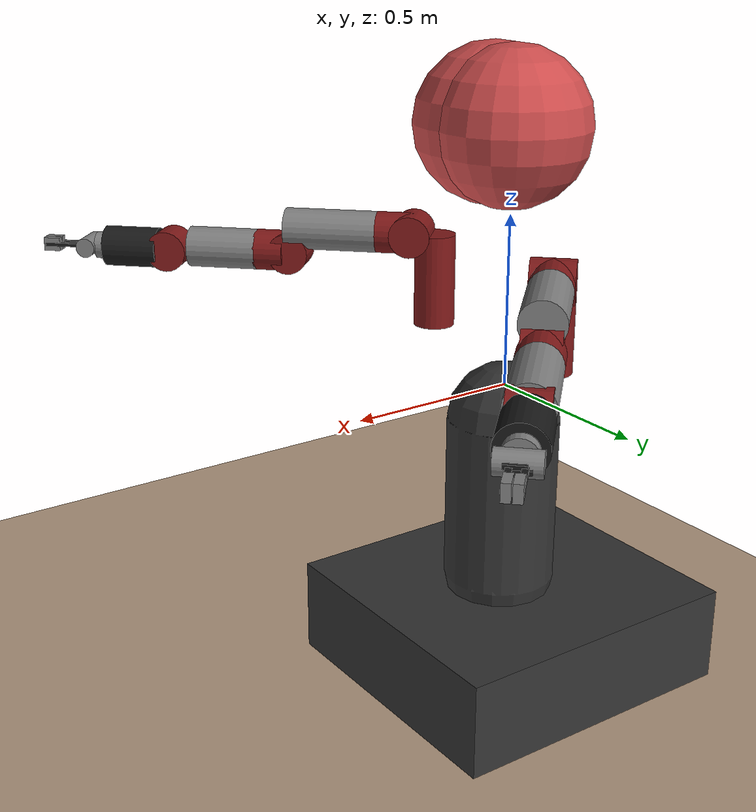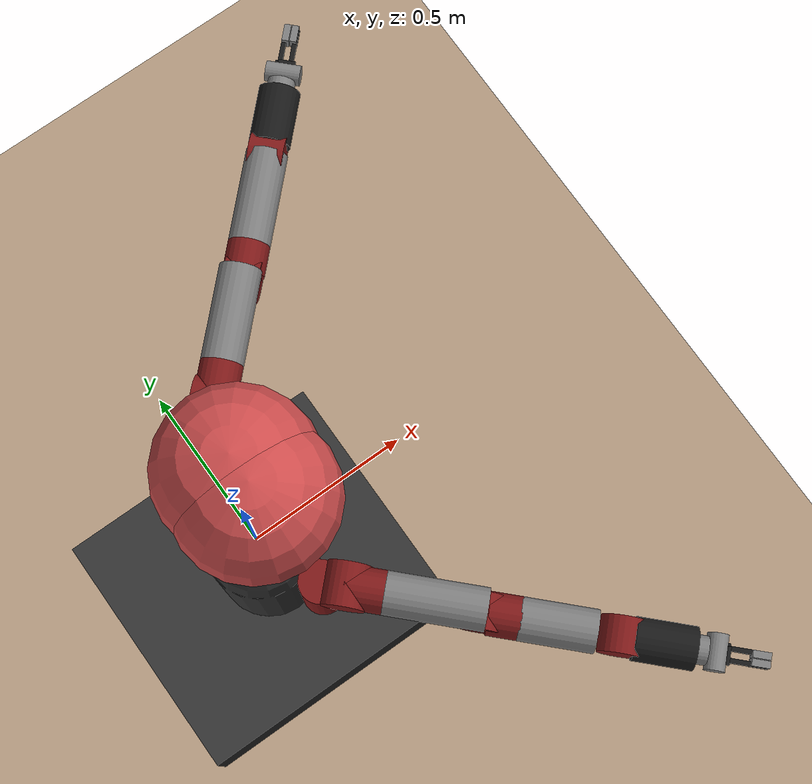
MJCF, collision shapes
<mujoco model="baxter">
  <compiler coordinate="local" angle="radian" meshdir="../../../models/baxter/mujoco/" texturedir="textures/" strippath="false" />
  <size njmax="795" nconmax="250" nstack="631875" />
  <option timestep="0.002"  gravity="0 0 -9.81" solver="Newton" noslip_iterations="0"/>
  <asset>
    <mesh name="base_link" file="meshes/torso/base_link.STL" />
    <mesh name="base_link_collision" file="meshes/torso/base_link_collision.STL" />
    <mesh name="PEDESTAL" file="meshes/base/PEDESTAL.STL" />
    <mesh name="pedestal_link_collision" file="meshes/base/pedestal_link_collision.STL" />
    <mesh name="H0" file="meshes/head/H0.STL" />
    <mesh name="H1" file="meshes/head/H1.STL" />
    <mesh name="S0" file="meshes/upper_shoulder/S0.STL" />
    <mesh name="S1" file="meshes/lower_shoulder/S1.STL" />
    <mesh name="E0" file="meshes/upper_elbow/E0.STL" />
    <mesh name="E1" file="meshes/lower_elbow/E1.STL" />
    <mesh name="W0" file="meshes/upper_forearm/W0.STL" />
    <mesh name="W1" file="meshes/lower_forearm/W1.STL" />
    <mesh name="W2" file="meshes/wrist/W2.STL" />
    <mesh name="paddle_tip" file="meshes/electric_gripper/fingers/paddle_tip.STL" />
    <mesh name="half_round_tip" file="meshes/electric_gripper/fingers/half_round_tip.STL" />
    <mesh name="electric_gripper_base" file="meshes/electric_gripper/electric_gripper_base.STL" />
    <mesh name="extended_narrow" file="meshes/electric_gripper/fingers/extended_narrow.STL"/>
  </asset>

  <visual>
    <map fogstart="1.5" fogend="3" />
    <quality shadowsize="2048" />
  </visual>

  <default>
    <default class="viz">
      <geom margin="0.001" contype="0" conaffinity="0" group="1" type="mesh" />
    </default>
    <geom solimp="0.99 0.99 0.01" solref="0.01 1" condim="6" />
  </default>

  <contact>
    <exclude body1="right_upper_shoulder" body2="torso" />
    <exclude body1="right_upper_shoulder" body2="right_upper_elbow" />
    <exclude body1="right_lower_shoulder" body2="torso" />
    <exclude body1="left_upper_shoulder" body2="torso" />
    <exclude body1="left_upper_shoulder" body2="left_upper_elbow" />
    <exclude body1="left_lower_shoulder" body2="torso" />
    <exclude body1="collision_head_link_1" body2="torso" />
    <exclude body1="collision_head_link_2" body2="torso" />
  </contact>

  <equality>
  </equality>

  <worldbody>
    <light directional="false" cutoff="90" exponent="1" diffuse="1 1 1" specular="0 0 0" pos="1 0 1.5" dir="-1 0 -2.5"/>
    <geom name="ground" type="plane" pos="0 0 -0.925" size="4 4 .05" rgba="0.7 0.6 0.5 1"/>
    <camera name="overhead_cam" pos="0.5 0.0 1.0" quat="0.707 0 0 -0.707" />
    <camera name="forward_cam" pos="2 0.0 0.1" quat="0.5 0.5 0.5 0.5" />

    <body name="base" pos="0 0 0">
      <inertial pos="0 0 0" mass="10" diaginertia="0.001 0.001 0.001" />
      <body name="collision_head_link_1" pos="0.11 0 0.75">
        <inertial pos="0 0 0" mass="0.0001" diaginertia="1e-008 1e-008 1e-008" />
        <geom margin="0.001" type="sphere" class="viz" size="0.001" rgba="0.8 0.3 0.3 0.3" pos="0 0 0" />
        <geom margin="0.001" type="sphere" size="0.22" rgba="0.8 0.3 0.3 0.3" pos="-0.07 -0.04 0"/>
      </body>
      <body name="collision_head_link_2" pos="0.11 0 0.75">
        <inertial pos="0 0 0" mass="0.0001" diaginertia="1e-008 1e-008 1e-008" />
        <geom margin="0.001" type="sphere" size="0.001" rgba="0.8 0.3 0.3 0.3" pos="0 0 0" />
        <geom margin="0.001" type="sphere" size="0.22" rgba="0.8 0.3 0.3 0.3" pos="-0.07 0.04 0" />
      </body>
      <body name="torso" pos="0 0 0">
        <inertial pos="0 0 0" quat="0.997433 0.00167178 0.0715546 -0.00209003" mass="35.3365" diaginertia="1.87139 1.66268 0.779991" />
        <geom margin="0.001" class="viz" mesh="base_link" />
        <geom margin="0.001" type="mesh" mesh="base_link_collision" class="viz"/>
        <body name="pedestal" pos="0 0 0">
          <inertial pos="0 0 0" quat="0.659267 -0.259505 -0.260945 0.655692" mass="60.864" diaginertia="6.0869 5.81635 4.20915" />
          <geom margin="0.001" class="viz" rgba="0.2 0.2 0.2 1" mesh="PEDESTAL" />
          <geom margin="0.001" pos="-.04 0 -.8" rgba="0.2 0.2 0.2 1" type="box" size=".46 .425 .16" />
          <geom margin="0.001" pos="0 0 -.35" rgba="0.2 0.2 0.2 1" type="capsule" size=".165 .25" />
        </body>
        <body name="head" pos="0.06 0 0.686">
          <inertial pos="0 0 0" quat="0.339345 0.850736 -0.347392 0.201027" mass="0.547767" diaginertia="0.00474065 0.00461087 0.00199949" />
          <joint limited="true" damping="0" armature=".01" name="head_pan" type="hinge" pos="0 0 0" axis="0 0 1" range="-1.5708 1.5708" />
          <geom margin="0.001" class="viz" rgba="0.2 0.2 0.2 1" mesh="H0" />
          <body name="screen" pos="0.1227 0 0" quat="0.453099 0.542864 0.542864 0.453099">
            <inertial pos="0 0 0" quat="0.995785 0.0113501 -0.000390852 0.0910132" mass="0.440171" diaginertia="0.0040484 0.00275826 0.00150834" />
            <geom margin="0.001" class="viz" rgba="0.5 0.1 0.1 1" mesh="H1" pos="0 0 -.03" euler="0 -1.57 0" />
            <geom margin="0.001" class="viz" name="display" type="box" size="0.109 0.08 0.002" rgba=".9 .9 .9 1" pos="0 -0.016 0" quat="0.991445 0.130526 0 0" />
          </body>
        </body>
        <body name="right_arm_mount" pos="0.024645 -0.219645 0.118588" quat="0.923879 0 0 -0.382684">
          <inertial pos="0 0 0" mass="0.0001" diaginertia="1e-008 1e-008 1e-008" />
          <body name="right_upper_shoulder" pos="0.055695 0 0.011038">
            <inertial pos="0.01783 0.00086 0.19127" quat="0.975667 0.0673303 -0.206117 0.0325173" mass="5.70044" diaginertia="0.0498344 0.0377511 0.0331351" />
            <joint limited="true" damping="0" armature=".01" name="right_s0" type="hinge" pos="0 0 0" axis="0 0 1" range="-1.70168 1.70168" />
            <geom margin="0.001" class="viz" rgba="0.5 0.1 0.1 1" mesh="S0" />
            <geom margin="0.001" type="cylinder" size="0.06 0.1361" rgba="0.5 0.1 0.1 1" pos="0 0 0.1361"/>
            <body name="right_lower_shoulder" pos="0.069 0 0.27035" quat="0.707107 -0.707107 0 0">
              <inertial pos="0.06845 0.00269 -0.00529" quat="0.447487 0.536948 0.56425 0.439391" mass="3.22698" diaginertia="0.0278991 0.0212327 0.0112937" />
              <joint limited="true" damping="0" armature=".01" name="right_s1" type="hinge" pos="0 0 0" axis="0 0 1" range="-2.147 1.047" />
              <geom margin="0.001" class="viz" rgba="0.5 0.1 0.1 1" mesh="S1" />
              <geom margin="0.001" type="cylinder" size="0.06 0.06" rgba="0.5 0.1 0.1 1" pos="0 0 0" />
              <body name="right_upper_elbow" pos="0.102 0 0" quat="0.5 0.5 0.5 0.5">
                <inertial pos="-0.00276 0.00132 0.18086" quat="0.838995 -0.0423128 -0.121287 0.52876" mass="4.31272" diaginertia="0.0287695 0.0273625 0.011409" />
                <joint limited="true" damping="0" armature=".01" name="right_e0" type="hinge" pos="0 0 0" axis="0 0 1" range="-3.05418 3.05418" />
                <geom margin="0.001" class="viz" rgba="0.5 0.1 0.1 1" mesh="E0" />
                <geom margin="0.001" type="cylinder" size="0.06 0.0535" rgba="0.5 0.1 0.1 1" pos="0 0 -0.0535"/>
                <geom margin="0.001" name="right_upper_elbow_visual" type="cylinder" size="0.06 0.1365" pos="0 0 0.1365" class="viz"/>
                <body name="right_lower_elbow" pos="0.069 0 0.26242" quat="0.5 -0.5 -0.5 -0.5">
                  <inertial pos="0.02611 0.00159 -0.01117" quat="0.440433 0.577149 0.562777 0.395221" mass="2.07206" diaginertia="0.0132096 0.00950002 0.00685697" />
                  <joint limited="true" damping="0" armature=".01" name="right_e1" type="hinge" pos="0 0 0" axis="0 0 1" range="-0.05 2.618" />
                  <geom margin="0.001" class="viz" rgba="0.5 0.1 0.1 1" mesh="E1" />
                  <geom margin="0.001" type="cylinder" size="0.06 0.05" rgba="0.5 0.1 0.1 1" pos="0 0 0" />
                  <body name="right_upper_forearm" pos="0.10359 0 0" quat="0.5 0.5 0.5 0.5">
                    <inertial pos="-0.00168 0.0046 0.13952" quat="0.892709 -0.0256256 0.00446984 0.449882" mass="2.24665" diaginertia="0.016916 0.0165511 0.00371123" />
                    <joint limited="true" damping="0" armature=".01" name="right_w0" type="hinge" pos="0 0 0" axis="0 0 1" range="-3.059 3.059" />
                    <geom margin="0.001" class="viz" rgba="0.5 0.1 0.1 1" mesh="W0" />
                    <geom margin="0.001" type="cylinder" size="0.06 0.044" rgba="0.5 0.1 0.1 1" pos="0 0 -0.044" />
                    <geom margin="0.001" name="right_upper_forearm_visual" type="cylinder" size="0.06 0.1036" pos="0 0 0.1" class="viz"/>
                    <body name="right_lower_forearm" pos="0.01 0 0.2707" quat="0.5 -0.5 -0.5 -0.5">
                      <inertial pos="0.06041 0.00697 0.006" quat="0.456911 0.468526 0.475683 0.587743" mass="1.60979" diaginertia="0.00708828 0.00552689 0.00379383" />
                      <joint limited="true" damping="0" armature=".01" name="right_w1" type="hinge" pos="0 0 0" axis="0 0 1" range="-1.5708 2.094" />
                      <geom margin="0.001" class="viz" rgba="0.5 0.1 0.1 1" mesh="W1" />
                      <geom margin="0.001" type="cylinder" size="0.06 0.05" rgba="0.5 0.1 0.1 1" pos="0 0 0" />
                      <body name="right_wrist" pos="0.115975 0 0" quat="0.5 0.5 0.5 0.5">
                        <inertial pos="0.00198 0.00125 0.01855" quat="0.0594843 0.68926 -0.16016 0.704082" mass="0.35093" diaginertia="0.0003082 0.000269928 0.000251035" />
                        <joint limited="true" damping="0" armature=".01" name="right_w2" type="hinge" pos="0 0 0" axis="0 0 1" range="-3.059 3.059" />
                        <geom margin="0.001" class="viz" rgba="0.1 0.1 0.1 1" mesh="W2" />
                        <geom margin="0.001" type="cylinder" size="0.06 0.0825" rgba="0.1 0.1 0.1 1" pos="0 0 0" />
                        <body name="right_hand" pos="0 0 0.11355">
                          <inertial pos="0.01093 0.00042 -0.01532" quat="0.025365 0.814618 0.0196357 0.579109" mass="0.19125" diaginertia="0.000246058 0.000211549 0.000167391" />
                          <geom type="cylinder" size="0.04 0.0232" pos="0 0 -0.0232" />
                          <body name="right_gripper_base" pos="0 0 0.025">
                            <inertial pos="0 0 0" quat="-0.5 0.5 0.5 0.5" mass="0.3" diaginertia="3e-08 2e-08 2e-08" />
                            <geom quat="0 0 0.707107 0.707107" class="viz" mesh="electric_gripper_base" />
                            <geom size="0.029 0.05" quat="0 0 0.707107 0.707107" type="cylinder" />
                            <body name="right_gripper_l_finger" pos="0 -0.0015 0.02">
                              <inertial pos="0 0 0" quat="0 0 0 -1" mass="0.02" diaginertia="0.01 0.01 0.01" />
                              <joint name="right_gripper_l_finger_joint" limited="true" armature=".01" pos="0 0 0" axis="0 1 0" type="slide" range="0 0.020833" />
                              <geom class="viz" mesh="extended_narrow" euler="1.57 1.57 0" rgba="0.1 0.1 0.1 1"/>
                              <geom size="0.005 0.00675 0.05635" pos="0 0.01725 0.0615" quat="0 0 0 -1" type="box" rgba="0.1 0.1 0.1 1"/>
                              <geom size="0.005 0.025 0.0085" pos="-0.005 -0.003 0.0083" quat="0 0 0 -1" type="box" rgba="0.1 0.1 0.1 1"/>
                              <body name="right_gripper_l_finger_tip" pos="0 0.01725 0.1127">
                                <inertial pos="0 0 0" quat="0 0 0 1" mass="0.01" diaginertia="0.01 0.01 0.01" />
                                <geom pos="-.007 -.01 0.003" class="viz" mesh="half_round_tip" euler="-1.57 0 0"/>
                                <geom size="0.02 0.01 0.025" pos="0 -0.0045 -0.015" quat="0 0 0 1" type="box" />
                              </body>
                            </body>
                            <body name="right_gripper_r_finger" pos="0 0.0015 0.02">
                              <inertial pos="0 0 0" mass="0.02" diaginertia="0.01 0.01 0.01" />
                              <joint name="right_gripper_r_finger_joint" limited="true" armature=".01" pos="0 0 0" axis="0 1 0" type="slide" range="-0.020833 0" />
                              <geom class="viz" mesh="extended_narrow" euler="1.57 -1.57 0" rgba="0.1 0.1 0.1 1"/>
                              <geom size="0.005 0.00675 0.05635" pos="0 -0.01725 0.0615" type="box" rgba="0.1 0.1 0.1 1"/>
                              <geom size="0.005 0.025 0.0085" pos="0.005 0.003 0.0083" type="box" rgba="0.1 0.1 0.1 1"/>
                              <body name="right_gripper_r_finger_tip" pos="0 -0.01725 0.1127">
                                <inertial pos="0 0 0" mass="0.01" diaginertia="0.01 0.01 0.01" />
                                <geom pos=".007 .01 0.003" class="viz" mesh="half_round_tip" euler="-1.57 3.14 0"/>
                                <geom size="0.02 0.01 0.025" pos="0 0.0045 -0.015" quat="0 0 0 1" type="box" />
                              </body>
                            </body>
                          </body>
                        </body>
                      </body>
                    </body>
                  </body>
                </body>
              </body>
            </body>
          </body>
        </body>
        <body name="left_arm_mount" pos="0.024645 0.219645 0.118588" quat="0.923879 0 0 0.382684">
          <inertial pos="0 0 0" mass="0.0001" diaginertia="1e-008 1e-008 1e-008" />
          <body name="left_upper_shoulder" pos="0.055695 0 0.011038">
            <inertial pos="0.01783 0.00086 0.19127" quat="0.975667 0.0673303 -0.206117 0.0325173" mass="5.70044" diaginertia="0.0498344 0.0377511 0.0331351" />
            <joint limited="true" damping="0" armature=".01" name="left_s0" type="hinge" pos="0 0 0" axis="0 0 1" range="-1.70168 1.70168" />
            <geom margin="0.001" class="viz" rgba="0.5 0.1 0.1 1" mesh="S0" />
            <geom margin="0.001" type="cylinder" size="0.06 0.1361" rgba="0.5 0.1 0.1 1" pos="0 0 0.1361" />
            <body name="left_lower_shoulder" pos="0.069 0 0.27035" quat="0.707107 -0.707107 0 0">
              <inertial pos="0.06845 0.00269 -0.00529" quat="0.447487 0.536948 0.56425 0.439391" mass="3.22698" diaginertia="0.0278991 0.0212327 0.0112937" />
              <joint limited="true" damping="0" armature=".01" name="left_s1" type="hinge" pos="0 0 0" axis="0 0 1" range="-2.147 1.047" />
              <geom margin="0.001" class="viz" rgba="0.5 0.1 0.1 1" mesh="S1" />
              <geom margin="0.001" type="cylinder" size="0.06 0.06" rgba="0.5 0.1 0.1 1" pos="0 0 0" />
              <body name="left_upper_elbow" pos="0.102 0 0" quat="0.5 0.5 0.5 0.5">
                <inertial pos="-0.00276 0.00132 0.18086" quat="0.838995 -0.0423128 -0.121287 0.52876" mass="4.31272" diaginertia="0.0287695 0.0273625 0.011409" />
                <joint limited="true" damping="0" armature=".01" name="left_e0" type="hinge" pos="0 0 0" axis="0 0 1" range="-3.05418 3.05418" />
                <geom margin="0.001" class="viz" rgba="0.5 0.1 0.1 1" mesh="E0" />
                <geom margin="0.001" type="cylinder" size="0.06 0.0535" rgba="0.5 0.1 0.1 1" pos="0 0 -0.0535" />
                <geom margin="0.001" name="left_upper_elbow_visual" type="cylinder" size="0.06 0.1365" pos="0 0 0.1365" class="viz"/>
                <body name="left_lower_elbow" pos="0.069 0 0.26242" quat="0.5 -0.5 -0.5 -0.5">
                  <inertial pos="0.02611 0.00159 -0.01117" quat="0.440433 0.577149 0.562777 0.395221" mass="2.07206" diaginertia="0.0132096 0.00950002 0.00685697" />
                  <joint limited="true" damping="0" armature=".01" name="left_e1" type="hinge" pos="0 0 0" axis="0 0 1" range="-0.05 2.618" />
                  <geom margin="0.001" class="viz" rgba="0.5 0.1 0.1 1" mesh="E1" />
                  <geom margin="0.001" type="cylinder" size="0.06 0.05" rgba="0.5 0.1 0.1 1" pos="0 0 0" />
                  <body name="left_upper_forearm" pos="0.10359 0 0" quat="0.5 0.5 0.5 0.5">
                    <inertial pos="-0.00168 0.0046 0.13952" quat="0.892709 -0.0256256 0.00446984 0.449882" mass="2.24665" diaginertia="0.016916 0.0165511 0.00371123" />
                    <joint limited="true" damping="0" armature=".01" name="left_w0" type="hinge" pos="0 0 0" axis="0 0 1" range="-3.059 3.059" />
                    <geom margin="0.001" class="viz" rgba="0.5 0.1 0.1 1" mesh="W0" />
                    <geom margin="0.001" type="cylinder" size="0.06 0.044" rgba="0.5 0.1 0.1 1" pos="0 0 -0.044" />
                    <geom margin="0.001" name="left_upper_forearm_visual" type="cylinder" size="0.06 0.136" pos="0 0 0.136" class="viz"/>
                    <body name="left_lower_forearm" pos="0.01 0 0.2707" quat="0.5 -0.5 -0.5 -0.5">
                      <inertial pos="0.06041 0.00697 0.006" quat="0.456911 0.468526 0.475683 0.587743" mass="1.60979" diaginertia="0.00708828 0.00552689 0.00379383" />
                      <joint limited="true" damping="0" armature=".01" name="left_w1" type="hinge" pos="0 0 0" axis="0 0 1" range="-1.5708 2.094" />
                      <geom margin="0.001" class="viz" rgba="0.5 0.1 0.1 1" mesh="W1" />
                      <geom margin="0.001" type="cylinder" size="0.06 0.05" rgba="0.5 0.1 0.1 1" pos="0 0 0" />
                      <body name="left_wrist" pos="0.115975 0 0" quat="0.5 0.5 0.5 0.5">
                        <inertial pos="0.00198 0.00125 0.01855" quat="0.0594843 0.68926 -0.16016 0.704082" mass="0.35093" diaginertia="0.0003082 0.000269928 0.000251035" />
                        <joint limited="true" damping="0" armature=".01" name="left_w2" type="hinge" pos="0 0 0" axis="0 0 1" range="-3.059 3.059" />
                        <geom margin="0.001" class="viz" rgba="0.1 0.1 0.1 1" mesh="W2" />
                        <geom margin="0.001" type="cylinder" size="0.06 0.0825" rgba="0.1 0.1 0.1 1" pos="0 0 0" />
                        <body name="left_hand" pos="0 0 0.11355">
                          <inertial pos="0.01093 0.00042 -0.01532" quat="0.025365 0.814618 0.0196357 0.579109" mass="0.19125" diaginertia="0.000246058 0.000211549 0.000167391" />
                          <geom type="cylinder" size="0.04 0.0232" pos="0 0 -0.0232" />
                          <body name="left_gripper_base" pos="0 0 0.025">
                            <inertial pos="0 0 0" quat="-0.5 0.5 0.5 0.5" mass="0.3" diaginertia="3e-08 2e-08 2e-08" />
                            <geom quat="0 0 0.707107 0.707107" class="viz" mesh="electric_gripper_base" />
                            <geom size="0.029 0.05" quat="0 0 0.707107 0.707107" type="cylinder" />
                            <body name="left_gripper_l_finger" pos="0 -0.0015 0.02">
                                <inertial pos="0 0 0" quat="0 0 0 -1" mass="0.02" diaginertia="0.01 0.01 0.01" />
                                <joint name="left_gripper_l_finger_joint" limited="true" armature=".01" pos="0 0 0" axis="0 1 0" type="slide" range="0 0.020833" />
                                <geom class="viz" mesh="extended_narrow" euler="1.57 1.57 0" rgba="0.1 0.1 0.1 1"/>
                                <geom size="0.005 0.00675 0.05635" pos="0 0.01725 0.0615" quat="0 0 0 -1" type="box" rgba="0.1 0.1 0.1 1"/>
                                <geom size="0.005 0.025 0.0085" pos="-0.005 -0.003 0.0083" quat="0 0 0 -1" type="box" rgba="0.1 0.1 0.1 1"/>
                                <body name="left_gripper_l_finger_tip" pos="0 0.01725 0.1127">
                                    <inertial pos="0 0 0" quat="0 0 0 1" mass="0.01" diaginertia="0.01 0.01 0.01" />
                                    <geom class="viz" pos="-.02 -.009 0.003" mesh="paddle_tip" euler="-1.57 0 0"/>
                                    <geom size="0.02 0.01 0.025" pos="0 -0.0045 -0.015" quat="0 0 0 1" type="box" />
                                </body>
                            </body>
                            <body name="left_gripper_r_finger" pos="0 0.0015 0.02">
                                <inertial pos="0 0 0" mass="0.02" diaginertia="0.01 0.01 0.01" />
                                <joint name="left_gripper_r_finger_joint" limited="true" armature=".01" pos="0 0 0" axis="0 1 0" type="slide" range="-0.020833 0" />
                                <geom class="viz" mesh="extended_narrow" euler="1.57 -1.57 0" rgba="0.1 0.1 0.1 1"/>
                                <geom size="0.005 0.00675 0.05635" pos="0 -0.01725 0.0615" type="box" rgba="0.1 0.1 0.1 1"/>
                                <geom size="0.005 0.025 0.0085" pos="0.005 0.003 0.0083" type="box" rgba="0.1 0.1 0.1 1"/>
                                <body name="left_gripper_r_finger_tip" pos="0 -0.01725 0.1127">
                                    <inertial pos="0 0 0" mass="0.01" diaginertia="0.01 0.01 0.01" />
                                    <geom pos=".02 .009 0.003" class="viz" mesh="paddle_tip" euler="-1.57 3.14 0"/>
                                    <geom size="0.02 0.01 0.025" pos="0 0.0045 -0.015" quat="0 0 0 1" type="box" />
                                </body>
                            </body>
                          </body>
                        </body>
                      </body>
                    </body>
                  </body>
                </body>
              </body>
            </body>
          </body>
        </body>
      </body>
    </body>
  </worldbody>

  <actuator>

    <velocity joint="right_s0" ctrlrange="-2 2" ctrllimited="true" kv="60"/>
    <velocity joint="right_s1" ctrlrange="-2 2" ctrllimited="true" kv="50"/>
    <velocity joint="right_e0" ctrlrange="-2 2" ctrllimited="true" kv="20"/>
    <velocity joint="right_e1" ctrlrange="-2 2" ctrllimited="true" kv="20"/>
    <velocity joint="right_w0" ctrlrange="-4 4" ctrllimited="true" kv="5" />
    <velocity joint="right_w1" ctrlrange="-4 4" ctrllimited="true" kv="5" />
    <velocity joint="right_w2" ctrlrange="-4 4" ctrllimited="true" kv="5" />
    <motor joint="right_gripper_l_finger_joint" ctrlrange="-500 500" ctrllimited="true"/>
    <motor joint="right_gripper_r_finger_joint" ctrlrange="-500 500" ctrllimited="true"/>

    <velocity joint="left_s0" ctrlrange="-2 2" ctrllimited="true" kv="60"/>
    <velocity joint="left_s1" ctrlrange="-2 2" ctrllimited="true" kv="50"/>
    <velocity joint="left_e0" ctrlrange="-2 2" ctrllimited="true" kv="20"/>
    <velocity joint="left_e1" ctrlrange="-2 2" ctrllimited="true" kv="20"/>
    <velocity joint="left_w0" ctrlrange="-4 4" ctrllimited="true" kv="5" />
    <velocity joint="left_w1" ctrlrange="-4 4" ctrllimited="true" kv="5" />
    <velocity joint="left_w2" ctrlrange="-4 4" ctrllimited="true" kv="5" />
    <motor joint="left_gripper_l_finger_joint" ctrlrange="-500 500" ctrllimited="true"/>
    <motor joint="left_gripper_r_finger_joint" ctrlrange="-500 500" ctrllimited="true"/>

</actuator>

</mujoco>
